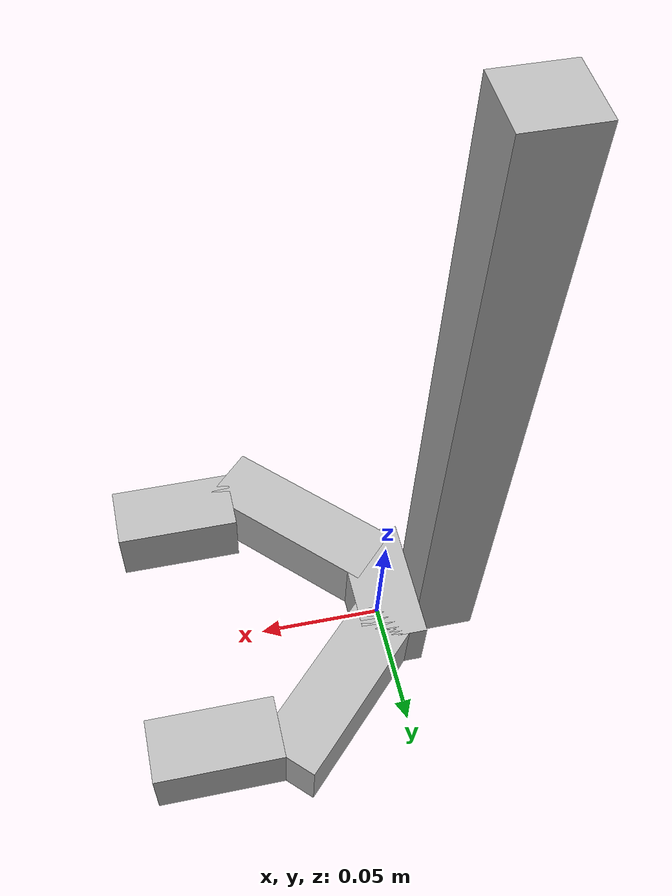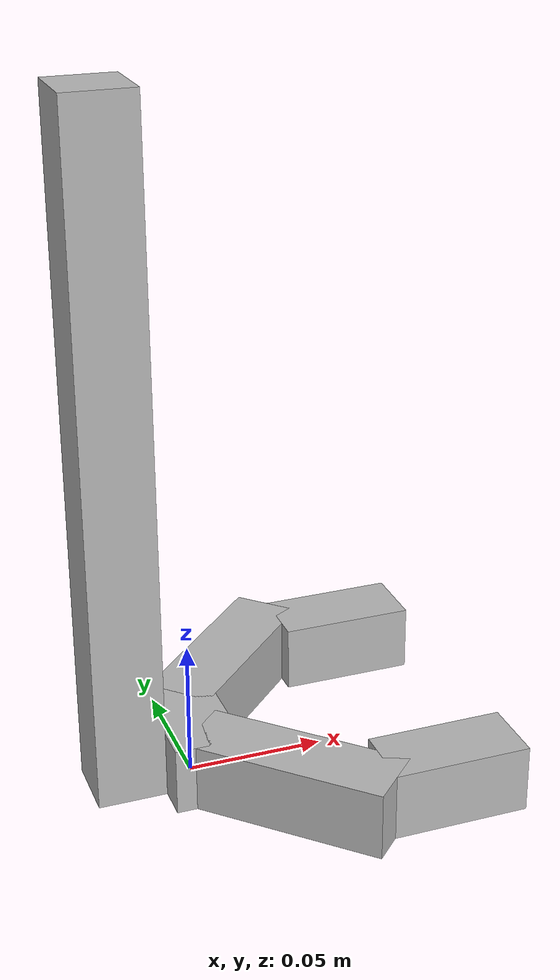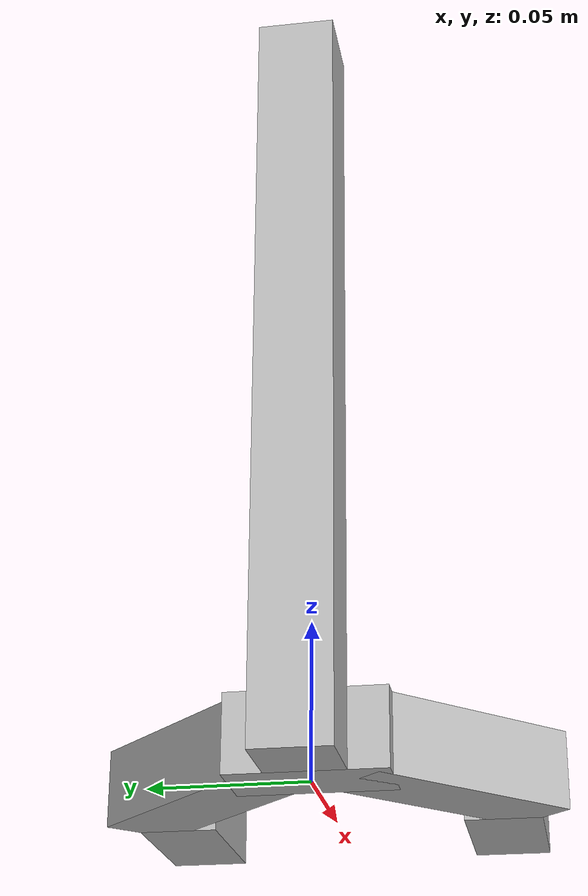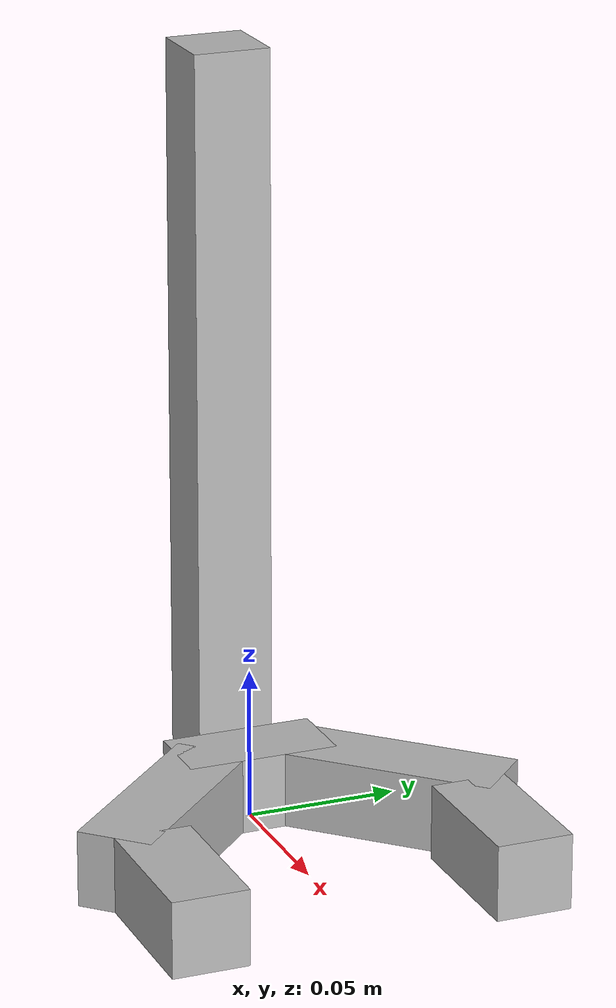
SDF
<?xml version="1.0"?>
<sdf version="1.4">
    <model name="simple_gripper">
        <link name="riser">
            <pose>-0.025 0.0 0.125 0 0 0</pose>
            <inertial>
                <pose>0 0 0 0 0 0</pose>
                <inertia>
                    <ixx>0.01</ixx>
                    <ixy>0</ixy>
                    <ixz>0</ixz>
                    <iyy>0.01</iyy>
                    <iyz>0</iyz>
                    <izz>0.01</izz>
                </inertia>
                <mass>10.0</mass>
            </inertial>
            <collision name="collision">
                <geometry>
                    <box>
                        <size>0.025 0.025 0.25</size>
                    </box>
                </geometry>
            </collision>
            <visual name="visual">
                <geometry>
                    <box>
                        <size>0.025 0.025 0.25</size>
                    </box>
                </geometry>
                <material>
                    <script>Gazebo/Purple</script>
                </material>
            </visual>
        </link>
        <link name="palm">
            <pose>0.0 0.0 0.0125 0 0 0</pose>
            <inertial>
                <inertia>
                    <ixx>0.01</ixx>
                    <ixy>0</ixy>
                    <ixz>0</ixz>
                    <iyy>0.01</iyy>
                    <iyz>0</iyz>
                    <izz>0.01</izz>
                </inertia>
                <mass>0.5</mass>
            </inertial>
            <collision name="collision">
                <geometry>
                    <box>
                        <size>0.025 0.05 0.025</size>
                    </box>
                </geometry>
            </collision>
            <visual name="visual">
                <geometry>
                    <box>
                        <size>0.025 0.05 0.025</size>
                    </box>
                </geometry>
                <material>
                    <script>Gazebo/Red</script>
                </material>
            </visual>
        </link>
        <link name="left_finger">
            <pose>0.0265 0.039 0.0125 0 0 -0.78539</pose>
            <inertial>
                <inertia>
                    <ixx>0.01</ixx>
                    <ixy>0</ixy>
                    <ixz>0</ixz>
                    <iyy>0.01</iyy>
                    <iyz>0</iyz>
                    <izz>0.01</izz>
                </inertia>
                <mass>0.1</mass>
            </inertial>
            <collision name="collision">
                <geometry>
                    <box>
                        <size>0.025 0.075 0.025</size>
                    </box>
                </geometry>
            </collision>
            <visual name="visual">
                <geometry>
                    <box>
                        <size>0.025 0.075 0.025</size>
                    </box>
                </geometry>
                <material>
                    <script>Gazebo/Blue</script>
                </material>
            </visual>
        </link>
        <link name="left_finger_tip">
            <pose>0.078 0.053 0.0125 0 0 1.5707</pose>
            <inertial>
                <inertia>
                    <ixx>0.01</ixx>
                    <ixy>0</ixy>
                    <ixz>0</ixz>
                    <iyy>0.01</iyy>
                    <iyz>0</iyz>
                    <izz>0.01</izz>
                </inertia>
                <mass>0.1</mass>
            </inertial>
            <collision name="collision">
                <geometry>
                    <box>
                        <size>0.025 0.05 0.025</size>
                    </box>
                </geometry>
            </collision>
            <visual name="visual">
                <geometry>
                    <box>
                        <size>0.025 0.05 0.025</size>
                    </box>
                </geometry>
                <material>
                    <script>Gazebo/Blue</script>
                </material>
            </visual>
        </link>
        <link name="right_finger">
            <pose>0.0265 -0.039 0.0125 0 0 0.78539</pose>
            <inertial>
                <inertia>
                    <ixx>0.01</ixx>
                    <ixy>0</ixy>
                    <ixz>0</ixz>
                    <iyy>0.01</iyy>
                    <iyz>0</iyz>
                    <izz>0.01</izz>
                </inertia>
                <mass>0.1</mass>
            </inertial>
            <collision name="collision">
                <geometry>
                    <box>
                        <size>0.025 0.075 0.025</size>
                    </box>
                </geometry>
            </collision>
            <visual name="visual">
                <geometry>
                    <box>
                        <size>0.025 0.075 0.025</size>
                    </box>
                </geometry>
                <material>
                    <script>Gazebo/Green</script>
                </material>
            </visual>
        </link>
        <link name="right_finger_tip">
            <pose>0.078 -0.053 0.0125 0 0 1.5707</pose>
            <inertial>
                <inertia>
                    <ixx>0.01</ixx>
                    <ixy>0</ixy>
                    <ixz>0</ixz>
                    <iyy>0.01</iyy>
                    <iyz>0</iyz>
                    <izz>0.01</izz>
                </inertia>
                <mass>0.1</mass>
            </inertial>
            <collision name="collision">
                <geometry>
                    <box>
                        <size>0.025 0.05 0.025</size>
                    </box>
                </geometry>
            </collision>
            <visual name="visual">
                <geometry>
                    <box>
                        <size>0.025 0.05 0.025</size>
                    </box>
                </geometry>
                <material>
                    <script>Gazebo/Green</script>
                </material>
            </visual>
        </link>
        <static>false</static>
    <joint name="palm_left_finger" type="revolute">
            <pose>0 -0.025 0 0 0 0</pose>
            <child>left_finger</child>
            <parent>palm</parent>
            <axis>
                <limit>
                    <lower>-0.4</lower>
                    <upper>0.4</upper>
                </limit>
                <xyz>0 0 1</xyz>
            </axis>
        </joint>
        <joint name="left_finger_tip" type="revolute">
            <pose>0 0.025 0 0 0 0</pose>
            <child>left_finger_tip</child>
            <parent>left_finger</parent>
            <axis>
                <limit>
                    <lower>-0.4</lower>
                    <upper>0.4</upper>
                </limit>
                <xyz>0 0 1</xyz>
            </axis>
        </joint>
        <joint name="palm_right_finger" type="revolute">
            <pose>0 0.025 0 0 0 0</pose>
            <child>right_finger</child>
            <parent>palm</parent>
            <axis>
                <limit>
                    <lower>-0.4</lower>
                    <upper>0.4</upper>
                </limit>
                <xyz>0 0 1</xyz>
            </axis>
        </joint>
        <joint name="right_finger_tip" type="revolute">
            <pose>0 0.025 0 0 0 0</pose>
            <child>right_finger_tip</child>
            <parent>right_finger</parent>
            <axis>
                <limit>
                    <lower>-0.4</lower>
                    <upper>0.4</upper>
                </limit>
                <xyz>0 0 1</xyz>
            </axis>
        </joint>
        <joint name="palm_riser" type="prismatic">
            <child>palm</child>
            <parent>riser</parent>
            <axis>
                <limit>
                    <lower>0</lower>
                    <upper>0.9</upper>
                </limit>
                <xyz>0 0 1</xyz>
            </axis>
        </joint>
    </model>
</sdf>
